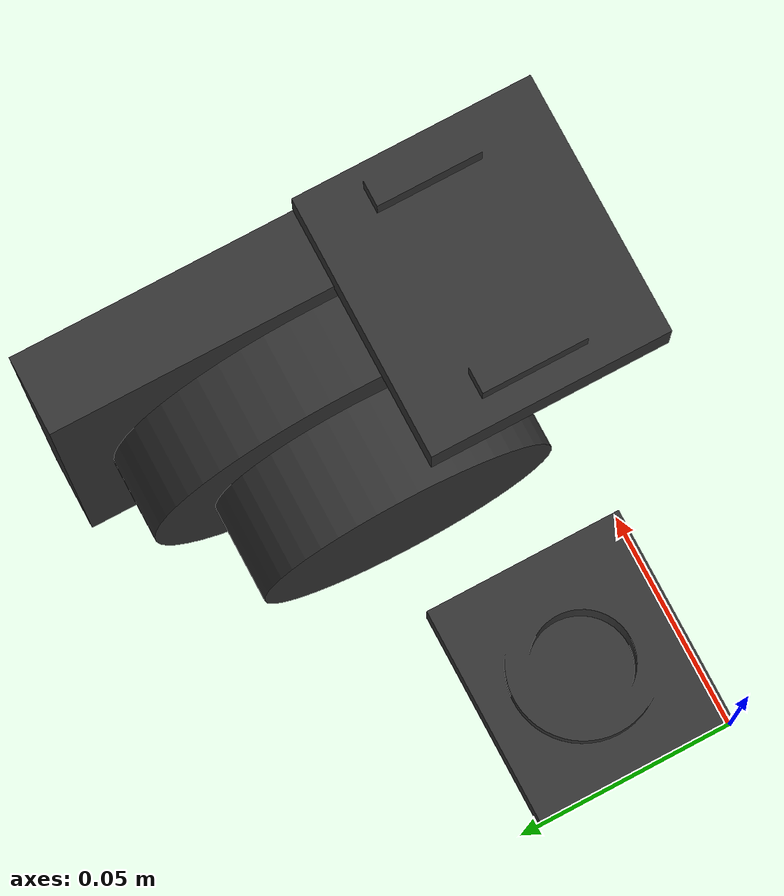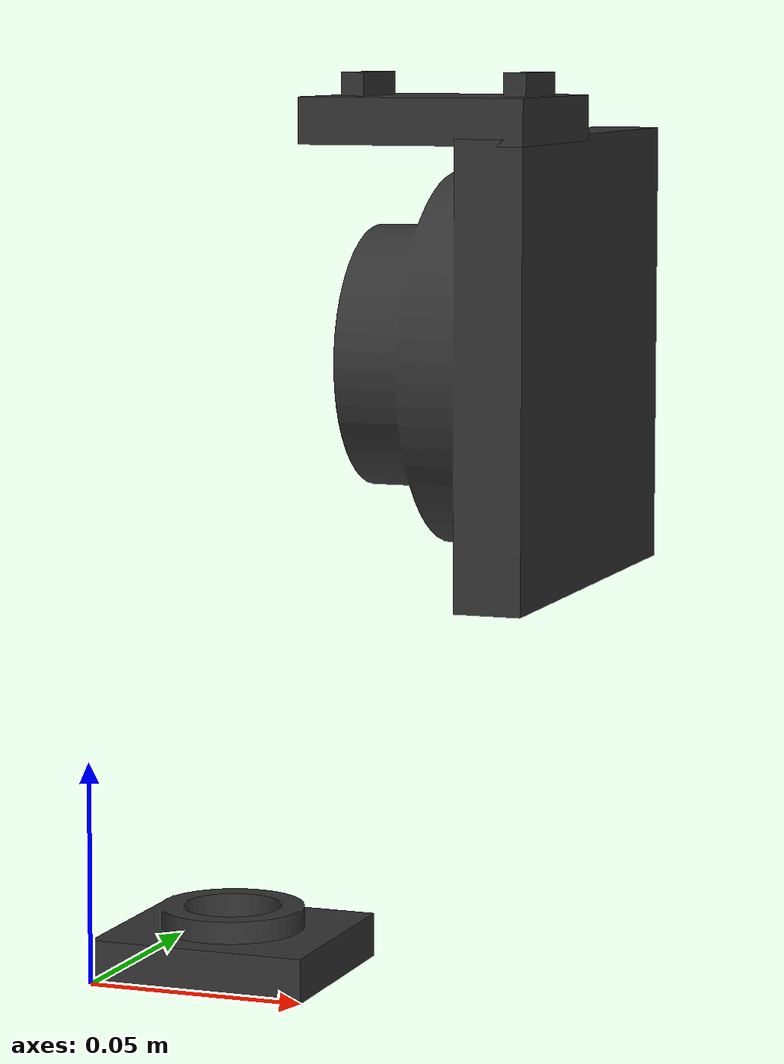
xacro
<?xml version="1.0"?>
<robot xmlns:xacro="http://www.ros.org/wiki/xacro" name="manipulator">

  <xacro:include filename="$(find manipulator_description)/urdf/manipulator.ros2_control.xacro"/>

  <xacro:property name="MESH_BASE_LINK" value="manipulator_description/meshes/visual/base_link.stl"/>
  <xacro:property name="MESH_LINK_1" value="manipulator_description/meshes/visual/link1.stl"/>
  <xacro:property name="MESH_CAMERA_LINK" value="manipulator_description/meshes/visual/camera_link.stl"/>

  <xacro:property name="MESH_COLLISION_BASE_LINK" value="manipulator_description/meshes/collision/base_link.stl"/>
  <xacro:property name="MESH_COLLISION_LINK_1" value="manipulator_description/meshes/collision/link1.stl"/>
  <xacro:property name="MESH_COLLISION_CAMERA_LINK" value="manipulator_description/meshes/collision/camera_link.stl"/>

  <material name="black">
    <color rgba="0.2 0.2 0.2 1.0"/>
  </material>
  <material name="red">
    <color rgba=".8 0 0 1"/>
  </material>

  <link name="base_link">
    <visual>
        <origin xyz="0 0 0" rpy="0 0 0"/>
        <geometry>
          <mesh filename="package://${MESH_BASE_LINK}"
              scale="1 1 1"/>
        </geometry>
        <material name="black"/>
      </visual>

      <collision>
        <origin xyz="0 0 0" rpy="0 0 0"/>
        <geometry>
          <mesh filename="package://${MESH_COLLISION_BASE_LINK}"
              scale="1 1 1"/>
        </geometry>
        <material name="black"/>
      </collision>
  </link>

  <joint name="joint0" type="continuous">
    <parent link="base_link"/>
    <child link="link1"/>
    <origin xyz="0.05 0 0.088" rpy="0 0 0" />
    <axis xyz="0 0 1" />
    <limit effort="0.5" velocity="6.0" />
  </joint>

  <link name="link1">
    <visual>
      <origin xyz="0 0 0" rpy="0 0 0"/>
      <geometry>
        <mesh filename="package://${MESH_LINK_1}"
            scale="1 1 1"/>
      </geometry>
      <material name="black"/>
    </visual>

    <collision>
      <origin xyz="0 0 0" rpy="0 0 0"/>
      <geometry>
        <mesh filename="package://${MESH_COLLISION_LINK_1}"
            scale="1 1 1"/>
      </geometry>
      <material name="black"/>
    </collision>
  </link>

  <joint name="joint1" type="continuous">
    <parent link="link1"/>
    <child link="camera_link"/>
    <origin xyz="0 0 0.086" rpy="0 0 0" />
    <axis xyz="0 1 0" />
    <limit effort="0.5" velocity="6.0" />
    <friction friction="0.01" />
    <dynamics damping="0.4" />
  </joint>

  <link name="camera_link">
    <visual>
      <origin xyz="0 0 0.0125" rpy="0 0 0"/>
      <geometry>
        <mesh filename="package://${MESH_CAMERA_LINK}"
            scale="1 1 1"/>
      </geometry>
      <material name="black"/>
    </visual>

    <collision>
      <origin xyz="0 0 0.0125" rpy="0 0 0"/>
      <geometry>
        <mesh filename="package://${MESH_COLLISION_CAMERA_LINK}"
            scale="1 1 1"/>
      </geometry>
      <material name="black"/>
    </collision>
  </link>

  <xacro:property name="NAME_JOINT_0" value="joint0"/>
  <xacro:property name="NAME_JOINT_1" value="joint1"/>
  <xacro:property name="JOINT_0_LOWER_LIMIT" value="-70"/>
  <xacro:property name="JOINT_0_UPPER_LIMIT" value="70"/>
  <xacro:property name="JOINT_1_LOWER_LIMIT" value="-70"/>
  <xacro:property name="JOINT_1_UPPER_LIMIT" value="70"/>

  <xacro:manipulator_ros2_control_settings
    name="manipulator"
    name_joint_0="${NAME_JOINT_0}"
    name_joint_1="${NAME_JOINT_1}"
    joint_0_lower_limit="${JOINT_0_LOWER_LIMIT}"
    joint_0_upper_limit="${JOINT_0_UPPER_LIMIT}"
    joint_1_lower_limit="${JOINT_1_LOWER_LIMIT}"
    joint_1_upper_limit="${JOINT_1_UPPER_LIMIT}" />

</robot>
